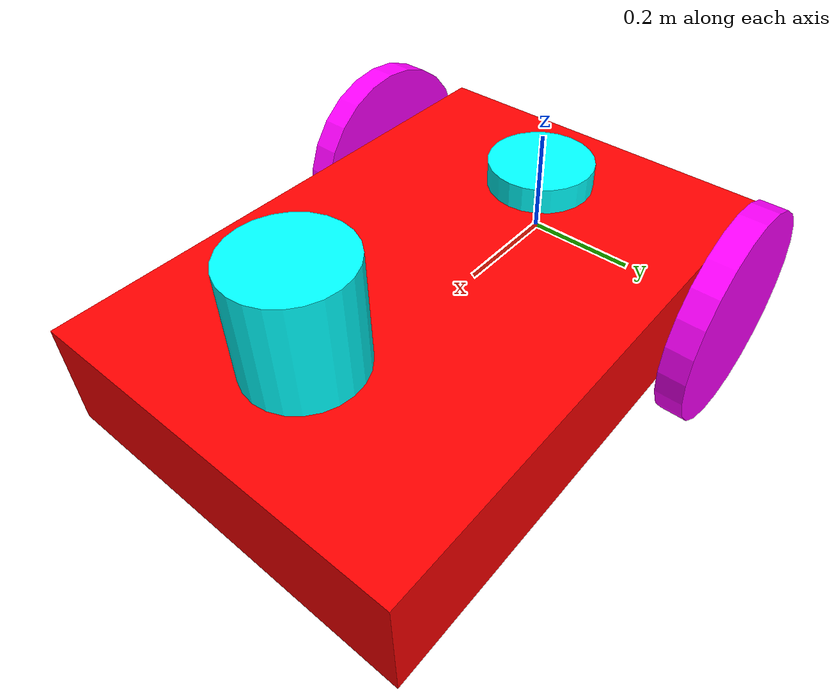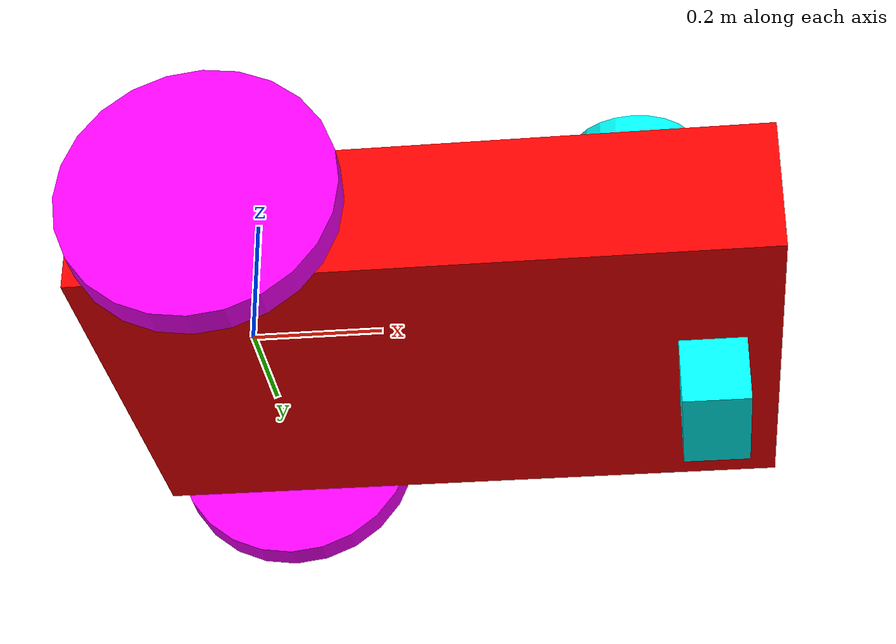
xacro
<robot xmlns:xacro="http://www.ros.org/wiki/xacro" name="MyRobot">
    <xacro:include filename="baseInertial.xacro" />

    <link name="base_link">
        <xacro:basic_box mass="1." x="1." y="0.7" z="0.2" r="1" g="0" b="0">
            <origin xyz="0.3 0.0 0.0"/>
        </xacro:basic_box>
    </link>

    <link name="wheelL_link">
        <xacro:basic_cylinder mass=".5" radius=".2" length=".05" r="1" g="0" b="1">
            <origin xyz="0.0 0.0 0.0" rpy="1.5708 0 0.0"/>
        </xacro:basic_cylinder>
    </link>

    <link name="wheelR_link">
        <xacro:basic_cylinder mass=".5" radius=".2" length=".05" r="1" g="0" b="1">
            <origin xyz="0.0 0.0 0.0" rpy="-1.5708 0 0.0"/>
        </xacro:basic_cylinder>
    </link>

    <link name="head_link">
        <visual>
            <origin xyz="0.0 0.0 0.05" rpy="0.0 0.0 0.0"/>
            <geometry>
                <box size="0.10 0.20 0.10"/>
            </geometry>
            <material name="adsfk">
                <color rgba=".0 01.0 1.0 1.0"/>
                <texture filename=""/>
            </material>
        </visual>
        <xacro:basic_box mass=".4" x="0.1" y="0.20" z="0.1" r="0" g="1" b="1">
            <origin xyz="0. 0.0 0.05"/>
        </xacro:basic_box>
    </link>

    <link name="lidar_link">
        <xacro:basic_cylinder mass=".1" radius=".1" length=".2" r="0" g="1" b="1">
            <origin xyz="0.0 0.0 -0.05" rpy="0 0 0.0"/>
        </xacro:basic_cylinder>
    </link>

    <link name="IMU_link">
        <xacro:basic_cylinder mass=".1" radius=".1" length=".05" r="0" g="1" b="1">
            <origin xyz="0.0 0.0 -0.0" rpy="0 0 0.0"/>
        </xacro:basic_cylinder>
    </link>

    <joint name="base_wheelR_joint" type="continuous">
        <origin xyz="0.0 -0.4 0.0" rpy="0.0 0.0 0.0"/>
        <parent link="base_link"/>
        <child link="wheelR_link"/>
        <axis xyz="0.0 1.0 0.0"/>
    </joint>

    <joint name="base_wheelL_joint" type="continuous">
        <origin xyz="0.0 0.4 0.0" rpy="0.0 0.0 3.14159"/>
        <parent link="base_link"/>
        <child link="wheelL_link"/>
        <axis xyz="0.0 -1.0 0.0"/>
    </joint>

    <joint name="base_head_link" type="fixed">
        <origin xyz="0.70 0.0 -0.20" rpy="0.0 0.0 0.0"/>
        <parent link="base_link"/>
        <child link="head_link"/>

    </joint>
    <joint name="base_lidar_link" type="fixed">
        <origin xyz="0.60 0.0 0.25" rpy="0.0 0.0 0.0"/>
        <parent link="base_link"/>
        <child link="lidar_link"/>
    </joint>

    <joint name="base_IMU_link" type="fixed">
        <origin xyz="0.0 0.0 0.125" rpy="0.0 0.0 0.0"/>
        <parent link="base_link"/>
        <child link="IMU_link"/>
    </joint>

    <gazebo reference="base_link">
        <material> Gazebo/Red </material>
    </gazebo>
    <gazebo reference="wheelL_link">
        <material> Gazebo/Purple </material>
    </gazebo>
    <gazebo reference="wheelR_link">
        <material> Gazebo/Purple </material>
    </gazebo>
    <gazebo reference="head_link">
        <material> Gazebo/Orange </material>
    </gazebo>

    <gazebo>
        <plugin name="differential_drive_controller" filename="libgazebo_ros_diff_drive.so">
            <ros>
            </ros>

            <update_rate>30</update_rate>

            <!-- wheels -->
            <left_joint>base_wheelL_joint</left_joint>
            <right_joint>base_wheelR_joint</right_joint>

            <!-- kinematics -->
            <wheel_separation>0.75</wheel_separation>
            <wheel_diameter>0.4</wheel_diameter>

            <!-- limits -->
            <max_wheel_torque>20</max_wheel_torque>
            <max_wheel_acceleration>1.0</max_wheel_acceleration>

            <command_topic>cmd_vel</command_topic>

            <!-- output -->
            <publish_odom>true</publish_odom>
            <publish_odom_tf>true</publish_odom_tf>
            <publish_wheel_tf>true</publish_wheel_tf>

            <odometry_topic>odom</odometry_topic>
            <odometry_frame>odom</odometry_frame>
            <robot_base_frame>base_link</robot_base_frame>
        </plugin>
    </gazebo>

    <gazebo reference="lidar_link">
        <sensor type="gpu_ray" name="lidar_sensor">
            <ray>
                <scan>
                    <horizontal>
                        <samples>300</samples>
                        <resolution>1</resolution>
                        <min_angle>-3.141592</min_angle>
                        <max_angle>3.141592</max_angle>
                    </horizontal>
                </scan>
                <range>
                    <min>0.10</min>
                    <max>10.0</max>
                    <resolution>0.01</resolution>
                </range>
                <noise>
                    <type>gaussian</type>
                    <mean>0.0</mean>
                    <stddev>0.01</stddev>
                </noise>
            </ray>
            <update_rate>5</update_rate>
            <visualize>true</visualize>
            <plugin name="lidar" filename="libgazebo_ros_ray_sensor.so">
                <output_type>sensor_msgs/PointCloud2</output_type>
                <frame_name>lidar_link</frame_name>
            </plugin>
        </sensor>
    </gazebo>

    <gazebo reference="IMU_link">
        <sensor name="imu_sensor" type="imu">
        <plugin filename="libgazebo_ros_imu_sensor.so" name="imu_plugin">
            <ros>
                <namespace>/imu</namespace>
                <remapping>~/out:=out</remapping>
            </ros>
            <initial_orientation_as_reference>false</initial_orientation_as_reference>
            </plugin>
            <always_on>true</always_on>
            <update_rate>100</update_rate>
            <visualize>true</visualize>
            <imu>
            <angular_velocity>
                <x>
                <noise type="gaussian">
                    <mean>0.0</mean>
                    <stddev>2e-4</stddev>
                    <bias_mean>0.0000075</bias_mean>
                    <bias_stddev>0.0000008</bias_stddev>
                </noise>
                </x>
                <y>
                <noise type="gaussian">
                    <mean>0.0</mean>
                    <stddev>2e-4</stddev>
                    <bias_mean>0.0000075</bias_mean>
                    <bias_stddev>0.0000008</bias_stddev>
                </noise>
                </y>
                <z>
                <noise type="gaussian">
                    <mean>0.0</mean>
                    <stddev>2e-4</stddev>
                    <bias_mean>0.0000075</bias_mean>
                    <bias_stddev>0.0000008</bias_stddev>
                </noise>
                </z>
            </angular_velocity>
            <linear_acceleration>
                <x>
                <noise type="gaussian">
                    <mean>0.0</mean>
                    <stddev>1.7e-2</stddev>
                    <bias_mean>0.1</bias_mean>
                    <bias_stddev>0.001</bias_stddev>
                </noise>
                </x>
                <y>
                <noise type="gaussian">
                    <mean>0.0</mean>
                    <stddev>1.7e-2</stddev>
                    <bias_mean>0.1</bias_mean>
                    <bias_stddev>0.001</bias_stddev>
                </noise>
                </y>
                <z>
                <noise type="gaussian">
                    <mean>0.0</mean>
                    <stddev>1.7e-2</stddev>
                    <bias_mean>0.1</bias_mean>
                    <bias_stddev>0.001</bias_stddev>
                </noise>
                </z>
            </linear_acceleration>
            </imu>
        </sensor>
    </gazebo>

</robot>

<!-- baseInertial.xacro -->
<robot xmlns:xacro="http://www.ros.org/wiki/xacro" >

    <!-- This file is not a robot in and of itself, it just contains some useful tags that could be included in any robot -->

    <!-- Specify some colours -->

    <material name="white">
        <color rgba="1 1 1 1"/>
    </material>

    <material name="orange">
        <color rgba="1 0.3 0.1 1"/>
    </material>

    <material name="blue">
        <color rgba="0.2 0.2 1 1"/>
    </material>

    <!-- Specify some standard inertial calculations https://en.wikipedia.org/wiki/List_of_moments_of_inertia -->
    <!-- These make use of xacro's mathematical functionality -->

    <xacro:macro name="inertial_sphere" params="mass radius *origin">
        <inertial>
            <xacro:insert_block name="origin"/>
            <mass value="${mass}" />
            <inertia ixx="${(2/5) * mass * (radius*radius)}" ixy="0.0" ixz="0.0"
                    iyy="${(2/5) * mass * (radius*radius)}" iyz="0.0"
                    izz="${(2/5) * mass * (radius*radius)}" />
        </inertial>
    </xacro:macro>

    <xacro:macro name="inertial_box" params="mass x y z *origin">
        <inertial>
            <xacro:insert_block name="origin"/>
            <mass value="${mass}" />
            <inertia ixx="${(1/12) * mass * (y*y+z*z)}" ixy="0.0" ixz="0.0"
                    iyy="${(1/12) * mass * (x*x+z*z)}" iyz="0.0"
                    izz="${(1/12) * mass * (x*x+y*y)}" />
        </inertial>
    </xacro:macro>

    <xacro:macro name="inertial_cylinder" params="mass length radius *origin">
        <inertial>
            <xacro:insert_block name="origin"/>
            <mass value="${mass}" />
            <inertia ixx="${(1/12) * mass * (3*radius*radius + length*length)}" ixy="0.0" ixz="0.0"
                    iyy="${(1/12) * mass * (3*radius*radius + length*length)}" iyz="0.0"
                    izz="${(1/2) * mass * (radius*radius)}" />
        </inertial>
    </xacro:macro>

    <xacro:macro name="basic_box" params="mass x y z r g b *origin">
        <inertial>
            <xacro:insert_block name="origin"/>
            <mass value="${mass}" />
            <inertia ixx="${(1/12) * mass * (y*y+z*z)}" ixy="0.0" ixz="0.0"
                    iyy="${(1/12) * mass * (x*x+z*z)}" iyz="0.0"
                    izz="${(1/12) * mass * (x*x+y*y)}" />
        </inertial>
        <visual>
            <xacro:insert_block name="origin"/>
            <geometry>
                <box size="${x} ${y} ${z}"/>
            </geometry>
            <material name="">
                <color rgba="${r} ${g} ${b} 1.0"/>
            </material>
        </visual>
        <collision>
            <xacro:insert_block name="origin"/>
            <geometry>
                <box size="${x} ${y} ${z}"/>
            </geometry>
        </collision>
    </xacro:macro>

    <xacro:macro name="basic_cylinder" params="mass radius length r g b *origin">
        <inertial>
            <xacro:insert_block name="origin"/>
            <mass value="${mass}" />
            <inertia ixx="${(1/12) * mass * (3*radius*radius + length*length)}" ixy="0.0" ixz="0.0"
                    iyy="${(1/12) * mass * (3*radius*radius + length*length)}" iyz="0.0"
                    izz="${(1/2) * mass * (radius*radius)}" />
        </inertial>
        <visual>
            <xacro:insert_block name="origin"/>
            <geometry>
                <cylinder radius="${radius}" length="${length}"/>
            </geometry>
            <material name="">
                <color rgba="${r} ${g} ${b} 1.0"/>
            </material>
        </visual>
        <collision>
            <xacro:insert_block name="origin"/>
            <geometry>
                <cylinder radius="${radius}" length="${length}"/>
            </geometry>
        </collision>
    </xacro:macro>

</robot>
